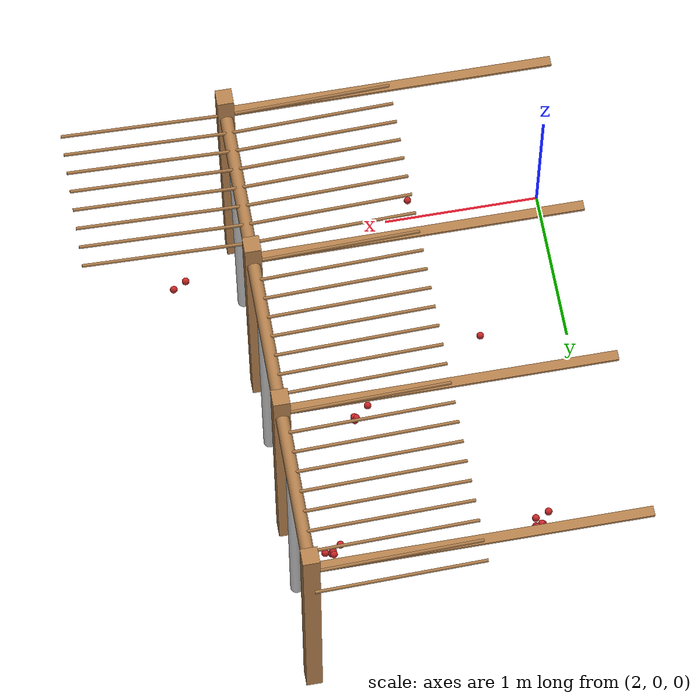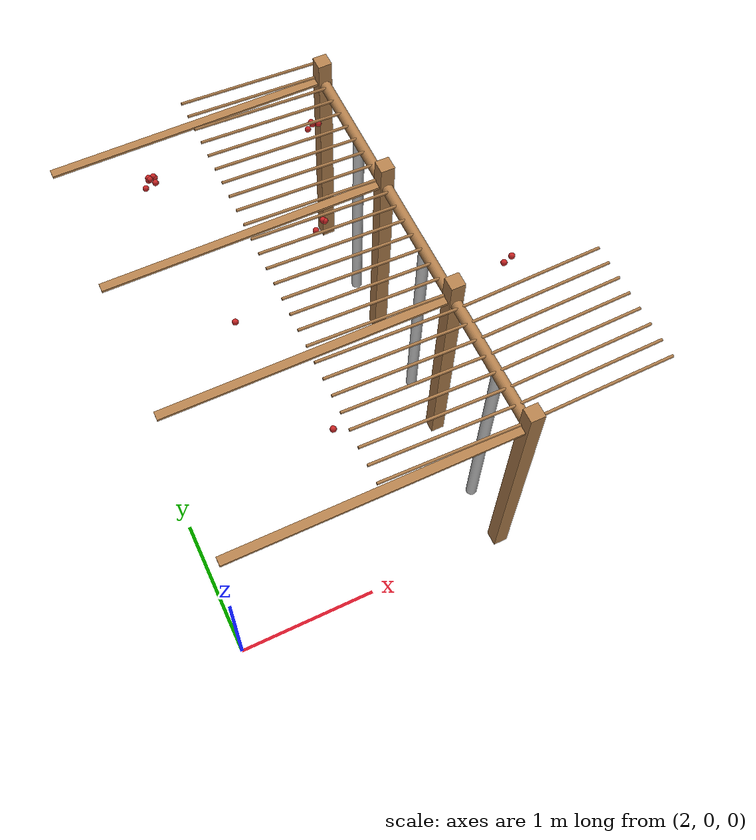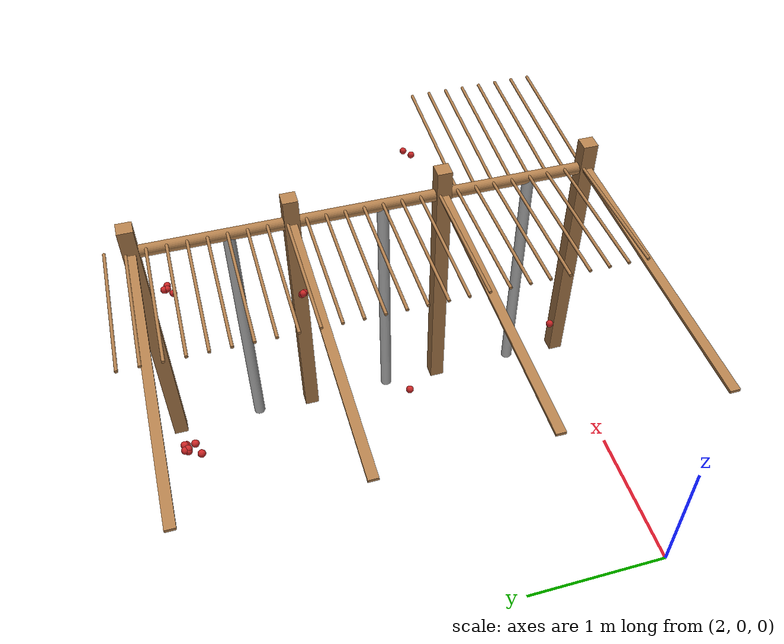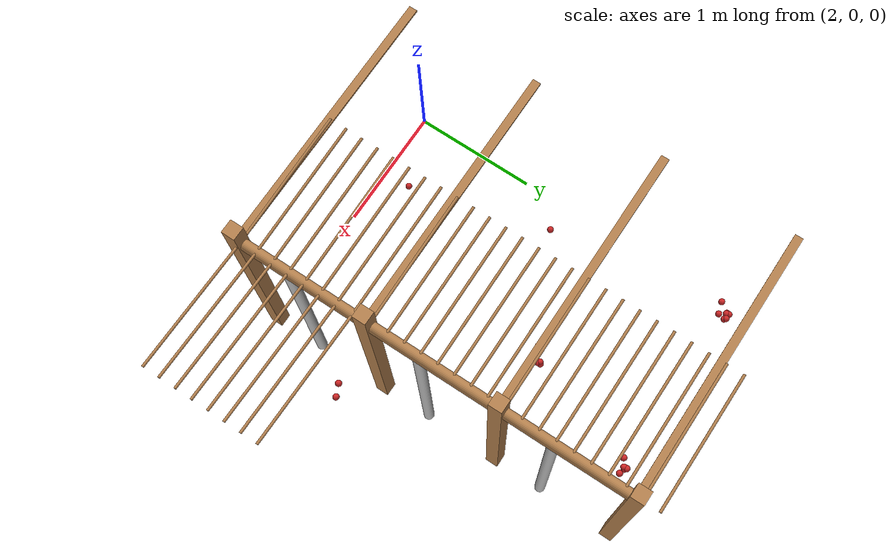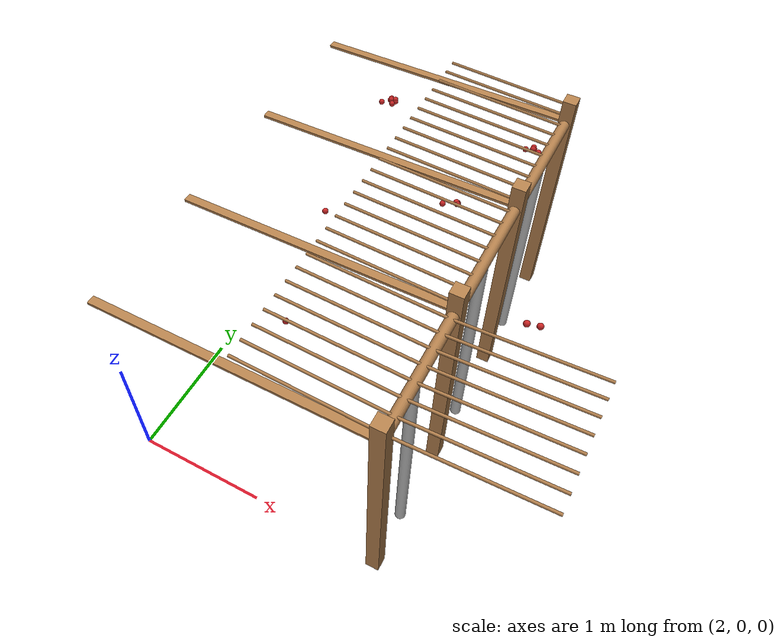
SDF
<sdf version="1.4">
 <model name="pergola">
  <include><name>post_14</name><pose>4.0 0.0 0 0 0 0</pose><uri>model://post</uri></include>
  <include><name>post_15</name><pose>4.0 1.0 0 0 0 0</pose><uri>model://post</uri></include>
  <include><name>post_16</name><pose>4.0 2.0 0 0 0 0</pose><uri>model://post</uri></include>
  <include><name>post_17</name><pose>4.0 3.0 0 0 0 0</pose><uri>model://post</uri></include>
  <link name="beam_7">
   <pose>3.0 0.0 1.81 0 0 0</pose>
   <collision name="collision"><geometry><box><size>2.0 0.06 0.02</size></box></geometry></collision>
   <visual name="visual">
    <geometry><box><size>2.0 0.06 0.02</size></box></geometry>
    <material><script><name>Gazebo/Wood</name></script></material>
   </visual>
   <inertial>
    <mass>5</mass>
    <inertia>
     <ixx>0.0016666666666666668</ixx>
     <ixy>0.0</ixy>
     <ixz>0.0</ixz>
     <iyy>1.6681666666666664</iyy>
     <iyz>0.0</iyz>
     <izz>1.6668333333333332</izz>
    </inertia>
   </inertial>
  </link>
  <link name="beam_8">
   <pose>3.0 1.0 1.81 0 0 0</pose>
   <collision name="collision"><geometry><box><size>2.0 0.06 0.02</size></box></geometry></collision>
   <visual name="visual">
    <geometry><box><size>2.0 0.06 0.02</size></box></geometry>
    <material><script><name>Gazebo/Wood</name></script></material>
   </visual>
   <inertial>
    <mass>5</mass>
    <inertia>
     <ixx>0.0016666666666666668</ixx>
     <ixy>0.0</ixy>
     <ixz>0.0</ixz>
     <iyy>1.6681666666666664</iyy>
     <iyz>0.0</iyz>
     <izz>1.6668333333333332</izz>
    </inertia>
   </inertial>
  </link>
  <link name="beam_9">
   <pose>3.0 2.0 1.81 0 0 0</pose>
   <collision name="collision"><geometry><box><size>2.0 0.06 0.02</size></box></geometry></collision>
   <visual name="visual">
    <geometry><box><size>2.0 0.06 0.02</size></box></geometry>
    <material><script><name>Gazebo/Wood</name></script></material>
   </visual>
   <inertial>
    <mass>5</mass>
    <inertia>
     <ixx>0.0016666666666666668</ixx>
     <ixy>0.0</ixy>
     <ixz>0.0</ixz>
     <iyy>1.6681666666666664</iyy>
     <iyz>0.0</iyz>
     <izz>1.6668333333333332</izz>
    </inertia>
   </inertial>
  </link>
  <link name="beam_10">
   <pose>3.0 3.0 1.81 0 0 0</pose>
   <collision name="collision"><geometry><box><size>2.0 0.06 0.02</size></box></geometry></collision>
   <visual name="visual">
    <geometry><box><size>2.0 0.06 0.02</size></box></geometry>
    <material><script><name>Gazebo/Wood</name></script></material>
   </visual>
   <inertial>
    <mass>5</mass>
    <inertia>
     <ixx>0.0016666666666666668</ixx>
     <ixy>0.0</ixy>
     <ixz>0.0</ixz>
     <iyy>1.6681666666666664</iyy>
     <iyz>0.0</iyz>
     <izz>1.6668333333333332</izz>
    </inertia>
   </inertial>
  </link>
  <include><name>tree_12</name><pose>4.0 0.4 0 0 0 0</pose><uri>model://tree_trunk</uri></include>
  <include><name>tree_13</name><pose>4.0 1.4 0 0 0 0</pose><uri>model://tree_trunk</uri></include>
  <include><name>tree_14</name><pose>4.0 2.4 0 0 0 0</pose><uri>model://tree_trunk</uri></include>
  <link name="baseBranch_12">
   <pose>4.0 0.5 1.8 1.5707963267948966 0 0</pose>
   <collision name="collision">
    <geometry><cylinder><radius>0.04</radius><length>0.94</length></cylinder></geometry>
   </collision>
   <visual name="visual">
    <geometry><cylinder><radius>0.04</radius><length>0.94</length></cylinder></geometry>
    <material><script><name>Gazebo/WoodFloor</name></script></material>
   </visual>
   <inertial>
    <mass>10</mass>
    <inertia>
     <ixx>0.7403333333333334</ixx>
     <ixy>0.0</ixy>
     <ixz>0.0</ixz>
     <iyy>0.7403333333333334</iyy>
     <iyz>0.0</iyz>
     <izz>0.008</izz>
    </inertia>
   </inertial>
  </link>
  <link name="baseBranch_13">
   <pose>4.0 1.5 1.8 1.5707963267948966 0 0</pose>
   <collision name="collision">
    <geometry><cylinder><radius>0.04</radius><length>0.94</length></cylinder></geometry>
   </collision>
   <visual name="visual">
    <geometry><cylinder><radius>0.04</radius><length>0.94</length></cylinder></geometry>
    <material><script><name>Gazebo/WoodFloor</name></script></material>
   </visual>
   <inertial>
    <mass>10</mass>
    <inertia>
     <ixx>0.7403333333333334</ixx>
     <ixy>0.0</ixy>
     <ixz>0.0</ixz>
     <iyy>0.7403333333333334</iyy>
     <iyz>0.0</iyz>
     <izz>0.008</izz>
    </inertia>
   </inertial>
  </link>
  <link name="baseBranch_14">
   <pose>4.0 2.5 1.8 1.5707963267948966 0 0</pose>
   <collision name="collision">
    <geometry><cylinder><radius>0.04</radius><length>0.94</length></cylinder></geometry>
   </collision>
   <visual name="visual">
    <geometry><cylinder><radius>0.04</radius><length>0.94</length></cylinder></geometry>
    <material><script><name>Gazebo/WoodFloor</name></script></material>
   </visual>
   <inertial>
    <mass>10</mass>
    <inertia>
     <ixx>0.7403333333333334</ixx>
     <ixy>0.0</ixy>
     <ixz>0.0</ixz>
     <iyy>0.7403333333333334</iyy>
     <iyz>0.0</iyz>
     <izz>0.008</izz>
    </inertia>
   </inertial>
  </link>
  <link name="vine_97">
   <pose>3.5 0.03 1.85 0 -1.5208379310729538 0</pose>
   <collision name="collision">
    <geometry><cylinder><radius>0.01</radius><length>1.0012492197250393</length></cylinder></geometry>
   </collision>
   <visual name="visual">
    <geometry><cylinder><radius>0.01</radius><length>1.0012492197250393</length></cylinder></geometry>
    <material><script><name>Gazebo/WoodFloor</name></script></material>
   </visual>
   <inertial>
    <mass>5</mass>
    <inertia>
     <ixx>0.41783333333333345</ixx>
     <ixy>0.0</ixy>
     <ixz>0.0</ixz>
     <iyy>0.41783333333333345</iyy>
     <iyz>0.0</iyz>
     <izz>0.00025</izz>
    </inertia>
   </inertial>
  </link>
  <link name="vine_99">
   <pose>3.5 0.155 1.85 0 -1.5208379310729538 0</pose>
   <collision name="collision">
    <geometry><cylinder><radius>0.01</radius><length>1.0012492197250393</length></cylinder></geometry>
   </collision>
   <visual name="visual">
    <geometry><cylinder><radius>0.01</radius><length>1.0012492197250393</length></cylinder></geometry>
    <material><script><name>Gazebo/WoodFloor</name></script></material>
   </visual>
   <inertial>
    <mass>5</mass>
    <inertia>
     <ixx>0.41783333333333345</ixx>
     <ixy>0.0</ixy>
     <ixz>0.0</ixz>
     <iyy>0.41783333333333345</iyy>
     <iyz>0.0</iyz>
     <izz>0.00025</izz>
    </inertia>
   </inertial>
  </link>
  <link name="vine_101">
   <pose>3.5 0.28 1.85 0 -1.5208379310729538 0</pose>
   <collision name="collision">
    <geometry><cylinder><radius>0.01</radius><length>1.0012492197250393</length></cylinder></geometry>
   </collision>
   <visual name="visual">
    <geometry><cylinder><radius>0.01</radius><length>1.0012492197250393</length></cylinder></geometry>
    <material><script><name>Gazebo/WoodFloor</name></script></material>
   </visual>
   <inertial>
    <mass>5</mass>
    <inertia>
     <ixx>0.41783333333333345</ixx>
     <ixy>0.0</ixy>
     <ixz>0.0</ixz>
     <iyy>0.41783333333333345</iyy>
     <iyz>0.0</iyz>
     <izz>0.00025</izz>
    </inertia>
   </inertial>
  </link>
  <link name="vine_103">
   <pose>3.5 0.405 1.85 0 -1.5208379310729538 0</pose>
   <collision name="collision">
    <geometry><cylinder><radius>0.01</radius><length>1.0012492197250393</length></cylinder></geometry>
   </collision>
   <visual name="visual">
    <geometry><cylinder><radius>0.01</radius><length>1.0012492197250393</length></cylinder></geometry>
    <material><script><name>Gazebo/WoodFloor</name></script></material>
   </visual>
   <inertial>
    <mass>5</mass>
    <inertia>
     <ixx>0.41783333333333345</ixx>
     <ixy>0.0</ixy>
     <ixz>0.0</ixz>
     <iyy>0.41783333333333345</iyy>
     <iyz>0.0</iyz>
     <izz>0.00025</izz>
    </inertia>
   </inertial>
  </link>
  <link name="vine_105">
   <pose>3.5 0.53 1.85 0 -1.5208379310729538 0</pose>
   <collision name="collision">
    <geometry><cylinder><radius>0.01</radius><length>1.0012492197250393</length></cylinder></geometry>
   </collision>
   <visual name="visual">
    <geometry><cylinder><radius>0.01</radius><length>1.0012492197250393</length></cylinder></geometry>
    <material><script><name>Gazebo/WoodFloor</name></script></material>
   </visual>
   <inertial>
    <mass>5</mass>
    <inertia>
     <ixx>0.41783333333333345</ixx>
     <ixy>0.0</ixy>
     <ixz>0.0</ixz>
     <iyy>0.41783333333333345</iyy>
     <iyz>0.0</iyz>
     <izz>0.00025</izz>
    </inertia>
   </inertial>
  </link>
  <link name="vine_107">
   <pose>3.5 0.655 1.85 0 -1.5208379310729538 0</pose>
   <collision name="collision">
    <geometry><cylinder><radius>0.01</radius><length>1.0012492197250393</length></cylinder></geometry>
   </collision>
   <visual name="visual">
    <geometry><cylinder><radius>0.01</radius><length>1.0012492197250393</length></cylinder></geometry>
    <material><script><name>Gazebo/WoodFloor</name></script></material>
   </visual>
   <inertial>
    <mass>5</mass>
    <inertia>
     <ixx>0.41783333333333345</ixx>
     <ixy>0.0</ixy>
     <ixz>0.0</ixz>
     <iyy>0.41783333333333345</iyy>
     <iyz>0.0</iyz>
     <izz>0.00025</izz>
    </inertia>
   </inertial>
  </link>
  <link name="vine_109">
   <pose>3.5 0.78 1.85 0 -1.5208379310729538 0</pose>
   <collision name="collision">
    <geometry><cylinder><radius>0.01</radius><length>1.0012492197250393</length></cylinder></geometry>
   </collision>
   <visual name="visual">
    <geometry><cylinder><radius>0.01</radius><length>1.0012492197250393</length></cylinder></geometry>
    <material><script><name>Gazebo/WoodFloor</name></script></material>
   </visual>
   <inertial>
    <mass>5</mass>
    <inertia>
     <ixx>0.41783333333333345</ixx>
     <ixy>0.0</ixy>
     <ixz>0.0</ixz>
     <iyy>0.41783333333333345</iyy>
     <iyz>0.0</iyz>
     <izz>0.00025</izz>
    </inertia>
   </inertial>
  </link>
  <link name="vine_111">
   <pose>3.5 0.905 1.85 0 -1.5208379310729538 0</pose>
   <collision name="collision">
    <geometry><cylinder><radius>0.01</radius><length>1.0012492197250393</length></cylinder></geometry>
   </collision>
   <visual name="visual">
    <geometry><cylinder><radius>0.01</radius><length>1.0012492197250393</length></cylinder></geometry>
    <material><script><name>Gazebo/WoodFloor</name></script></material>
   </visual>
   <inertial>
    <mass>5</mass>
    <inertia>
     <ixx>0.41783333333333345</ixx>
     <ixy>0.0</ixy>
     <ixz>0.0</ixz>
     <iyy>0.41783333333333345</iyy>
     <iyz>0.0</iyz>
     <izz>0.00025</izz>
    </inertia>
   </inertial>
  </link>
  <link name="vine_113">
   <pose>3.5 1.03 1.85 0 -1.5208379310729538 0</pose>
   <collision name="collision">
    <geometry><cylinder><radius>0.01</radius><length>1.0012492197250393</length></cylinder></geometry>
   </collision>
   <visual name="visual">
    <geometry><cylinder><radius>0.01</radius><length>1.0012492197250393</length></cylinder></geometry>
    <material><script><name>Gazebo/WoodFloor</name></script></material>
   </visual>
   <inertial>
    <mass>5</mass>
    <inertia>
     <ixx>0.41783333333333345</ixx>
     <ixy>0.0</ixy>
     <ixz>0.0</ixz>
     <iyy>0.41783333333333345</iyy>
     <iyz>0.0</iyz>
     <izz>0.00025</izz>
    </inertia>
   </inertial>
  </link>
  <link name="vine_115">
   <pose>3.5 1.155 1.85 0 -1.5208379310729538 0</pose>
   <collision name="collision">
    <geometry><cylinder><radius>0.01</radius><length>1.0012492197250393</length></cylinder></geometry>
   </collision>
   <visual name="visual">
    <geometry><cylinder><radius>0.01</radius><length>1.0012492197250393</length></cylinder></geometry>
    <material><script><name>Gazebo/WoodFloor</name></script></material>
   </visual>
   <inertial>
    <mass>5</mass>
    <inertia>
     <ixx>0.41783333333333345</ixx>
     <ixy>0.0</ixy>
     <ixz>0.0</ixz>
     <iyy>0.41783333333333345</iyy>
     <iyz>0.0</iyz>
     <izz>0.00025</izz>
    </inertia>
   </inertial>
  </link>
  <link name="vine_117">
   <pose>3.5 1.28 1.85 0 -1.5208379310729538 0</pose>
   <collision name="collision">
    <geometry><cylinder><radius>0.01</radius><length>1.0012492197250393</length></cylinder></geometry>
   </collision>
   <visual name="visual">
    <geometry><cylinder><radius>0.01</radius><length>1.0012492197250393</length></cylinder></geometry>
    <material><script><name>Gazebo/WoodFloor</name></script></material>
   </visual>
   <inertial>
    <mass>5</mass>
    <inertia>
     <ixx>0.41783333333333345</ixx>
     <ixy>0.0</ixy>
     <ixz>0.0</ixz>
     <iyy>0.41783333333333345</iyy>
     <iyz>0.0</iyz>
     <izz>0.00025</izz>
    </inertia>
   </inertial>
  </link>
  <link name="vine_119">
   <pose>3.5 1.405 1.85 0 -1.5208379310729538 0</pose>
   <collision name="collision">
    <geometry><cylinder><radius>0.01</radius><length>1.0012492197250393</length></cylinder></geometry>
   </collision>
   <visual name="visual">
    <geometry><cylinder><radius>0.01</radius><length>1.0012492197250393</length></cylinder></geometry>
    <material><script><name>Gazebo/WoodFloor</name></script></material>
   </visual>
   <inertial>
    <mass>5</mass>
    <inertia>
     <ixx>0.41783333333333345</ixx>
     <ixy>0.0</ixy>
     <ixz>0.0</ixz>
     <iyy>0.41783333333333345</iyy>
     <iyz>0.0</iyz>
     <izz>0.00025</izz>
    </inertia>
   </inertial>
  </link>
  <link name="vine_121">
   <pose>3.5 1.53 1.85 0 -1.5208379310729538 0</pose>
   <collision name="collision">
    <geometry><cylinder><radius>0.01</radius><length>1.0012492197250393</length></cylinder></geometry>
   </collision>
   <visual name="visual">
    <geometry><cylinder><radius>0.01</radius><length>1.0012492197250393</length></cylinder></geometry>
    <material><script><name>Gazebo/WoodFloor</name></script></material>
   </visual>
   <inertial>
    <mass>5</mass>
    <inertia>
     <ixx>0.41783333333333345</ixx>
     <ixy>0.0</ixy>
     <ixz>0.0</ixz>
     <iyy>0.41783333333333345</iyy>
     <iyz>0.0</iyz>
     <izz>0.00025</izz>
    </inertia>
   </inertial>
  </link>
  <link name="vine_123">
   <pose>3.5 1.655 1.85 0 -1.5208379310729538 0</pose>
   <collision name="collision">
    <geometry><cylinder><radius>0.01</radius><length>1.0012492197250393</length></cylinder></geometry>
   </collision>
   <visual name="visual">
    <geometry><cylinder><radius>0.01</radius><length>1.0012492197250393</length></cylinder></geometry>
    <material><script><name>Gazebo/WoodFloor</name></script></material>
   </visual>
   <inertial>
    <mass>5</mass>
    <inertia>
     <ixx>0.41783333333333345</ixx>
     <ixy>0.0</ixy>
     <ixz>0.0</ixz>
     <iyy>0.41783333333333345</iyy>
     <iyz>0.0</iyz>
     <izz>0.00025</izz>
    </inertia>
   </inertial>
  </link>
  <link name="vine_125">
   <pose>3.5 1.78 1.85 0 -1.5208379310729538 0</pose>
   <collision name="collision">
    <geometry><cylinder><radius>0.01</radius><length>1.0012492197250393</length></cylinder></geometry>
   </collision>
   <visual name="visual">
    <geometry><cylinder><radius>0.01</radius><length>1.0012492197250393</length></cylinder></geometry>
    <material><script><name>Gazebo/WoodFloor</name></script></material>
   </visual>
   <inertial>
    <mass>5</mass>
    <inertia>
     <ixx>0.41783333333333345</ixx>
     <ixy>0.0</ixy>
     <ixz>0.0</ixz>
     <iyy>0.41783333333333345</iyy>
     <iyz>0.0</iyz>
     <izz>0.00025</izz>
    </inertia>
   </inertial>
  </link>
  <link name="vine_127">
   <pose>3.5 1.905 1.85 0 -1.5208379310729538 0</pose>
   <collision name="collision">
    <geometry><cylinder><radius>0.01</radius><length>1.0012492197250393</length></cylinder></geometry>
   </collision>
   <visual name="visual">
    <geometry><cylinder><radius>0.01</radius><length>1.0012492197250393</length></cylinder></geometry>
    <material><script><name>Gazebo/WoodFloor</name></script></material>
   </visual>
   <inertial>
    <mass>5</mass>
    <inertia>
     <ixx>0.41783333333333345</ixx>
     <ixy>0.0</ixy>
     <ixz>0.0</ixz>
     <iyy>0.41783333333333345</iyy>
     <iyz>0.0</iyz>
     <izz>0.00025</izz>
    </inertia>
   </inertial>
  </link>
  <link name="vine_129">
   <pose>3.5 2.03 1.85 0 -1.5208379310729538 0</pose>
   <collision name="collision">
    <geometry><cylinder><radius>0.01</radius><length>1.0012492197250393</length></cylinder></geometry>
   </collision>
   <visual name="visual">
    <geometry><cylinder><radius>0.01</radius><length>1.0012492197250393</length></cylinder></geometry>
    <material><script><name>Gazebo/WoodFloor</name></script></material>
   </visual>
   <inertial>
    <mass>5</mass>
    <inertia>
     <ixx>0.41783333333333345</ixx>
     <ixy>0.0</ixy>
     <ixz>0.0</ixz>
     <iyy>0.41783333333333345</iyy>
     <iyz>0.0</iyz>
     <izz>0.00025</izz>
    </inertia>
   </inertial>
  </link>
  <link name="vine_131">
   <pose>3.5 2.155 1.85 0 -1.5208379310729538 0</pose>
   <collision name="collision">
    <geometry><cylinder><radius>0.01</radius><length>1.0012492197250393</length></cylinder></geometry>
   </collision>
   <visual name="visual">
    <geometry><cylinder><radius>0.01</radius><length>1.0012492197250393</length></cylinder></geometry>
    <material><script><name>Gazebo/WoodFloor</name></script></material>
   </visual>
   <inertial>
    <mass>5</mass>
    <inertia>
     <ixx>0.41783333333333345</ixx>
     <ixy>0.0</ixy>
     <ixz>0.0</ixz>
     <iyy>0.41783333333333345</iyy>
     <iyz>0.0</iyz>
     <izz>0.00025</izz>
    </inertia>
   </inertial>
  </link>
  <link name="vine_133">
   <pose>3.5 2.28 1.85 0 -1.5208379310729538 0</pose>
   <collision name="collision">
    <geometry><cylinder><radius>0.01</radius><length>1.0012492197250393</length></cylinder></geometry>
   </collision>
   <visual name="visual">
    <geometry><cylinder><radius>0.01</radius><length>1.0012492197250393</length></cylinder></geometry>
    <material><script><name>Gazebo/WoodFloor</name></script></material>
   </visual>
   <inertial>
    <mass>5</mass>
    <inertia>
     <ixx>0.41783333333333345</ixx>
     <ixy>0.0</ixy>
     <ixz>0.0</ixz>
     <iyy>0.41783333333333345</iyy>
     <iyz>0.0</iyz>
     <izz>0.00025</izz>
    </inertia>
   </inertial>
  </link>
  <link name="vine_135">
   <pose>3.5 2.405 1.85 0 -1.5208379310729538 0</pose>
   <collision name="collision">
    <geometry><cylinder><radius>0.01</radius><length>1.0012492197250393</length></cylinder></geometry>
   </collision>
   <visual name="visual">
    <geometry><cylinder><radius>0.01</radius><length>1.0012492197250393</length></cylinder></geometry>
    <material><script><name>Gazebo/WoodFloor</name></script></material>
   </visual>
   <inertial>
    <mass>5</mass>
    <inertia>
     <ixx>0.41783333333333345</ixx>
     <ixy>0.0</ixy>
     <ixz>0.0</ixz>
     <iyy>0.41783333333333345</iyy>
     <iyz>0.0</iyz>
     <izz>0.00025</izz>
    </inertia>
   </inertial>
  </link>
  <link name="vine_137">
   <pose>3.5 2.53 1.85 0 -1.5208379310729538 0</pose>
   <collision name="collision">
    <geometry><cylinder><radius>0.01</radius><length>1.0012492197250393</length></cylinder></geometry>
   </collision>
   <visual name="visual">
    <geometry><cylinder><radius>0.01</radius><length>1.0012492197250393</length></cylinder></geometry>
    <material><script><name>Gazebo/WoodFloor</name></script></material>
   </visual>
   <inertial>
    <mass>5</mass>
    <inertia>
     <ixx>0.41783333333333345</ixx>
     <ixy>0.0</ixy>
     <ixz>0.0</ixz>
     <iyy>0.41783333333333345</iyy>
     <iyz>0.0</iyz>
     <izz>0.00025</izz>
    </inertia>
   </inertial>
  </link>
  <link name="vine_139">
   <pose>3.5 2.655 1.85 0 -1.5208379310729538 0</pose>
   <collision name="collision">
    <geometry><cylinder><radius>0.01</radius><length>1.0012492197250393</length></cylinder></geometry>
   </collision>
   <visual name="visual">
    <geometry><cylinder><radius>0.01</radius><length>1.0012492197250393</length></cylinder></geometry>
    <material><script><name>Gazebo/WoodFloor</name></script></material>
   </visual>
   <inertial>
    <mass>5</mass>
    <inertia>
     <ixx>0.41783333333333345</ixx>
     <ixy>0.0</ixy>
     <ixz>0.0</ixz>
     <iyy>0.41783333333333345</iyy>
     <iyz>0.0</iyz>
     <izz>0.00025</izz>
    </inertia>
   </inertial>
  </link>
  <link name="vine_141">
   <pose>3.5 2.78 1.85 0 -1.5208379310729538 0</pose>
   <collision name="collision">
    <geometry><cylinder><radius>0.01</radius><length>1.0012492197250393</length></cylinder></geometry>
   </collision>
   <visual name="visual">
    <geometry><cylinder><radius>0.01</radius><length>1.0012492197250393</length></cylinder></geometry>
    <material><script><name>Gazebo/WoodFloor</name></script></material>
   </visual>
   <inertial>
    <mass>5</mass>
    <inertia>
     <ixx>0.41783333333333345</ixx>
     <ixy>0.0</ixy>
     <ixz>0.0</ixz>
     <iyy>0.41783333333333345</iyy>
     <iyz>0.0</iyz>
     <izz>0.00025</izz>
    </inertia>
   </inertial>
  </link>
  <link name="vine_143">
   <pose>3.5 2.905 1.85 0 -1.5208379310729538 0</pose>
   <collision name="collision">
    <geometry><cylinder><radius>0.01</radius><length>1.0012492197250393</length></cylinder></geometry>
   </collision>
   <visual name="visual">
    <geometry><cylinder><radius>0.01</radius><length>1.0012492197250393</length></cylinder></geometry>
    <material><script><name>Gazebo/WoodFloor</name></script></material>
   </visual>
   <inertial>
    <mass>5</mass>
    <inertia>
     <ixx>0.41783333333333345</ixx>
     <ixy>0.0</ixy>
     <ixz>0.0</ixz>
     <iyy>0.41783333333333345</iyy>
     <iyz>0.0</iyz>
     <izz>0.00025</izz>
    </inertia>
   </inertial>
  </link>
  <link name="vine_145">
   <pose>3.5 3.03 1.85 0 -1.5208379310729538 0</pose>
   <collision name="collision">
    <geometry><cylinder><radius>0.01</radius><length>1.0012492197250393</length></cylinder></geometry>
   </collision>
   <visual name="visual">
    <geometry><cylinder><radius>0.01</radius><length>1.0012492197250393</length></cylinder></geometry>
    <material><script><name>Gazebo/WoodFloor</name></script></material>
   </visual>
   <inertial>
    <mass>5</mass>
    <inertia>
     <ixx>0.41783333333333345</ixx>
     <ixy>0.0</ixy>
     <ixz>0.0</ixz>
     <iyy>0.41783333333333345</iyy>
     <iyz>0.0</iyz>
     <izz>0.00025</izz>
    </inertia>
   </inertial>
  </link>
  <link name="vine_147">
   <pose>3.5 3.155 1.85 0 -1.5208379310729538 0</pose>
   <collision name="collision">
    <geometry><cylinder><radius>0.01</radius><length>1.0012492197250393</length></cylinder></geometry>
   </collision>
   <visual name="visual">
    <geometry><cylinder><radius>0.01</radius><length>1.0012492197250393</length></cylinder></geometry>
    <material><script><name>Gazebo/WoodFloor</name></script></material>
   </visual>
   <inertial>
    <mass>5</mass>
    <inertia>
     <ixx>0.41783333333333345</ixx>
     <ixy>0.0</ixy>
     <ixz>0.0</ixz>
     <iyy>0.41783333333333345</iyy>
     <iyz>0.0</iyz>
     <izz>0.00025</izz>
    </inertia>
   </inertial>
  </link>
  <link name="vine_192">
   <pose>4.5 0.03 1.85 0 1.5208379310729538 0</pose>
   <collision name="collision">
    <geometry><cylinder><radius>0.01</radius><length>1.0012492197250393</length></cylinder></geometry>
   </collision>
   <visual name="visual">
    <geometry><cylinder><radius>0.01</radius><length>1.0012492197250393</length></cylinder></geometry>
    <material><script><name>Gazebo/WoodFloor</name></script></material>
   </visual>
   <inertial>
    <mass>5</mass>
    <inertia>
     <ixx>0.41783333333333345</ixx>
     <ixy>0.0</ixy>
     <ixz>0.0</ixz>
     <iyy>0.41783333333333345</iyy>
     <iyz>0.0</iyz>
     <izz>0.00025</izz>
    </inertia>
   </inertial>
  </link>
  <link name="vine_194">
   <pose>4.5 0.155 1.85 0 1.5208379310729538 0</pose>
   <collision name="collision">
    <geometry><cylinder><radius>0.01</radius><length>1.0012492197250393</length></cylinder></geometry>
   </collision>
   <visual name="visual">
    <geometry><cylinder><radius>0.01</radius><length>1.0012492197250393</length></cylinder></geometry>
    <material><script><name>Gazebo/WoodFloor</name></script></material>
   </visual>
   <inertial>
    <mass>5</mass>
    <inertia>
     <ixx>0.41783333333333345</ixx>
     <ixy>0.0</ixy>
     <ixz>0.0</ixz>
     <iyy>0.41783333333333345</iyy>
     <iyz>0.0</iyz>
     <izz>0.00025</izz>
    </inertia>
   </inertial>
  </link>
  <link name="vine_196">
   <pose>4.5 0.28 1.85 0 1.5208379310729538 0</pose>
   <collision name="collision">
    <geometry><cylinder><radius>0.01</radius><length>1.0012492197250393</length></cylinder></geometry>
   </collision>
   <visual name="visual">
    <geometry><cylinder><radius>0.01</radius><length>1.0012492197250393</length></cylinder></geometry>
    <material><script><name>Gazebo/WoodFloor</name></script></material>
   </visual>
   <inertial>
    <mass>5</mass>
    <inertia>
     <ixx>0.41783333333333345</ixx>
     <ixy>0.0</ixy>
     <ixz>0.0</ixz>
     <iyy>0.41783333333333345</iyy>
     <iyz>0.0</iyz>
     <izz>0.00025</izz>
    </inertia>
   </inertial>
  </link>
  <link name="vine_198">
   <pose>4.5 0.405 1.85 0 1.5208379310729538 0</pose>
   <collision name="collision">
    <geometry><cylinder><radius>0.01</radius><length>1.0012492197250393</length></cylinder></geometry>
   </collision>
   <visual name="visual">
    <geometry><cylinder><radius>0.01</radius><length>1.0012492197250393</length></cylinder></geometry>
    <material><script><name>Gazebo/WoodFloor</name></script></material>
   </visual>
   <inertial>
    <mass>5</mass>
    <inertia>
     <ixx>0.41783333333333345</ixx>
     <ixy>0.0</ixy>
     <ixz>0.0</ixz>
     <iyy>0.41783333333333345</iyy>
     <iyz>0.0</iyz>
     <izz>0.00025</izz>
    </inertia>
   </inertial>
  </link>
  <link name="vine_200">
   <pose>4.5 0.53 1.85 0 1.5208379310729538 0</pose>
   <collision name="collision">
    <geometry><cylinder><radius>0.01</radius><length>1.0012492197250393</length></cylinder></geometry>
   </collision>
   <visual name="visual">
    <geometry><cylinder><radius>0.01</radius><length>1.0012492197250393</length></cylinder></geometry>
    <material><script><name>Gazebo/WoodFloor</name></script></material>
   </visual>
   <inertial>
    <mass>5</mass>
    <inertia>
     <ixx>0.41783333333333345</ixx>
     <ixy>0.0</ixy>
     <ixz>0.0</ixz>
     <iyy>0.41783333333333345</iyy>
     <iyz>0.0</iyz>
     <izz>0.00025</izz>
    </inertia>
   </inertial>
  </link>
  <link name="vine_202">
   <pose>4.5 0.655 1.85 0 1.5208379310729538 0</pose>
   <collision name="collision">
    <geometry><cylinder><radius>0.01</radius><length>1.0012492197250393</length></cylinder></geometry>
   </collision>
   <visual name="visual">
    <geometry><cylinder><radius>0.01</radius><length>1.0012492197250393</length></cylinder></geometry>
    <material><script><name>Gazebo/WoodFloor</name></script></material>
   </visual>
   <inertial>
    <mass>5</mass>
    <inertia>
     <ixx>0.41783333333333345</ixx>
     <ixy>0.0</ixy>
     <ixz>0.0</ixz>
     <iyy>0.41783333333333345</iyy>
     <iyz>0.0</iyz>
     <izz>0.00025</izz>
    </inertia>
   </inertial>
  </link>
  <link name="vine_204">
   <pose>4.5 0.78 1.85 0 1.5208379310729538 0</pose>
   <collision name="collision">
    <geometry><cylinder><radius>0.01</radius><length>1.0012492197250393</length></cylinder></geometry>
   </collision>
   <visual name="visual">
    <geometry><cylinder><radius>0.01</radius><length>1.0012492197250393</length></cylinder></geometry>
    <material><script><name>Gazebo/WoodFloor</name></script></material>
   </visual>
   <inertial>
    <mass>5</mass>
    <inertia>
     <ixx>0.41783333333333345</ixx>
     <ixy>0.0</ixy>
     <ixz>0.0</ixz>
     <iyy>0.41783333333333345</iyy>
     <iyz>0.0</iyz>
     <izz>0.00025</izz>
    </inertia>
   </inertial>
  </link>
  <link name="vine_206">
   <pose>4.5 0.905 1.85 0 1.5208379310729538 0</pose>
   <collision name="collision">
    <geometry><cylinder><radius>0.01</radius><length>1.0012492197250393</length></cylinder></geometry>
   </collision>
   <visual name="visual">
    <geometry><cylinder><radius>0.01</radius><length>1.0012492197250393</length></cylinder></geometry>
    <material><script><name>Gazebo/WoodFloor</name></script></material>
   </visual>
   <inertial>
    <mass>5</mass>
    <inertia>
     <ixx>0.41783333333333345</ixx>
     <ixy>0.0</ixy>
     <ixz>0.0</ixz>
     <iyy>0.41783333333333345</iyy>
     <iyz>0.0</iyz>
     <izz>0.00025</izz>
    </inertia>
   </inertial>
  </link>
  <link name="fruit_0">
   <pose>3.48124596532613 1.9688616955845732 1.6043501258765045 0 0 0</pose>
   <collision name="fruit_collision_0"><geometry><sphere><radius>0.022</radius></sphere></geometry></collision>
   <visual name="visual">
    <geometry><sphere><radius>0.022</radius></sphere></geometry>
    <material><script><name>Gazebo/Red</name></script></material>
   </visual>
   <inertial>
    <mass>0.05</mass>
    <inertia>
     <ixx>9.679999999999999e-06</ixx>
     <ixy>0.0</ixy>
     <ixz>0.0</ixz>
     <iyy>9.679999999999999e-06</iyy>
     <iyz>0.0</iyz>
     <izz>9.679999999999999e-06</izz>
    </inertia>
   </inertial>
   <sensor name="fruit_contact_0" type="contact">
    <contact><collision>fruit_collision_0</collision></contact>
   </sensor>
  </link>
  <link name="fruit_3">
   <pose>2.5652901117325655 2.80417365282846 1.5777996387256017 0 0 0</pose>
   <collision name="fruit_collision_3"><geometry><sphere><radius>0.022</radius></sphere></geometry></collision>
   <visual name="visual">
    <geometry><sphere><radius>0.022</radius></sphere></geometry>
    <material><script><name>Gazebo/Red</name></script></material>
   </visual>
   <inertial>
    <mass>0.05</mass>
    <inertia>
     <ixx>9.679999999999999e-06</ixx>
     <ixy>0.0</ixy>
     <ixz>0.0</ixz>
     <iyy>9.679999999999999e-06</iyy>
     <iyz>0.0</iyz>
     <izz>9.679999999999999e-06</izz>
    </inertia>
   </inertial>
   <sensor name="fruit_contact_3" type="contact">
    <contact><collision>fruit_collision_3</collision></contact>
   </sensor>
  </link>
  <link name="fruit_4">
   <pose>4.413713193997998 1.08854193352347 1.826189019774437 0 0 0</pose>
   <collision name="fruit_collision_4"><geometry><sphere><radius>0.022</radius></sphere></geometry></collision>
   <visual name="visual">
    <geometry><sphere><radius>0.022</radius></sphere></geometry>
    <material><script><name>Gazebo/Red</name></script></material>
   </visual>
   <inertial>
    <mass>0.05</mass>
    <inertia>
     <ixx>9.679999999999999e-06</ixx>
     <ixy>0.0</ixy>
     <ixz>0.0</ixz>
     <iyy>9.679999999999999e-06</iyy>
     <iyz>0.0</iyz>
     <izz>9.679999999999999e-06</izz>
    </inertia>
   </inertial>
   <sensor name="fruit_contact_4" type="contact">
    <contact><collision>fruit_collision_4</collision></contact>
   </sensor>
  </link>
  <link name="fruit_12">
   <pose>2.7315603595949653 1.5928750879810518 1.5010689712865561 0 0 0</pose>
   <collision name="fruit_collision_12"><geometry><sphere><radius>0.022</radius></sphere></geometry></collision>
   <visual name="visual">
    <geometry><sphere><radius>0.022</radius></sphere></geometry>
    <material><script><name>Gazebo/Red</name></script></material>
   </visual>
   <inertial>
    <mass>0.05</mass>
    <inertia>
     <ixx>9.679999999999999e-06</ixx>
     <ixy>0.0</ixy>
     <ixz>0.0</ixz>
     <iyy>9.679999999999999e-06</iyy>
     <iyz>0.0</iyz>
     <izz>9.679999999999999e-06</izz>
    </inertia>
   </inertial>
   <sensor name="fruit_contact_12" type="contact">
    <contact><collision>fruit_collision_12</collision></contact>
   </sensor>
  </link>
  <link name="fruit_17">
   <pose>2.9922607162508292 0.6214303603857965 1.4905732123118223 0 0 0</pose>
   <collision name="fruit_collision_17"><geometry><sphere><radius>0.022</radius></sphere></geometry></collision>
   <visual name="visual">
    <geometry><sphere><radius>0.022</radius></sphere></geometry>
    <material><script><name>Gazebo/Red</name></script></material>
   </visual>
   <inertial>
    <mass>0.05</mass>
    <inertia>
     <ixx>9.679999999999999e-06</ixx>
     <ixy>0.0</ixy>
     <ixz>0.0</ixz>
     <iyy>9.679999999999999e-06</iyy>
     <iyz>0.0</iyz>
     <izz>9.679999999999999e-06</izz>
    </inertia>
   </inertial>
   <sensor name="fruit_contact_17" type="contact">
    <contact><collision>fruit_collision_17</collision></contact>
   </sensor>
  </link>
  <link name="fruit_18">
   <pose>3.7913984874766964 2.8021836696470257 1.5942901776091416 0 0 0</pose>
   <collision name="fruit_collision_18"><geometry><sphere><radius>0.022</radius></sphere></geometry></collision>
   <visual name="visual">
    <geometry><sphere><radius>0.022</radius></sphere></geometry>
    <material><script><name>Gazebo/Red</name></script></material>
   </visual>
   <inertial>
    <mass>0.05</mass>
    <inertia>
     <ixx>9.679999999999999e-06</ixx>
     <ixy>0.0</ixy>
     <ixz>0.0</ixz>
     <iyy>9.679999999999999e-06</iyy>
     <iyz>0.0</iyz>
     <izz>9.679999999999999e-06</izz>
    </inertia>
   </inertial>
   <sensor name="fruit_contact_18" type="contact">
    <contact><collision>fruit_collision_18</collision></contact>
   </sensor>
  </link>
  <link name="fruit_31">
   <pose>3.5689117042010308 2.0409134640872253 1.5852538067636754 0 0 0</pose>
   <collision name="fruit_collision_31"><geometry><sphere><radius>0.022</radius></sphere></geometry></collision>
   <visual name="visual">
    <geometry><sphere><radius>0.022</radius></sphere></geometry>
    <material><script><name>Gazebo/Red</name></script></material>
   </visual>
   <inertial>
    <mass>0.05</mass>
    <inertia>
     <ixx>9.679999999999999e-06</ixx>
     <ixy>0.0</ixy>
     <ixz>0.0</ixz>
     <iyy>9.679999999999999e-06</iyy>
     <iyz>0.0</iyz>
     <izz>9.679999999999999e-06</izz>
    </inertia>
   </inertial>
   <sensor name="fruit_contact_31" type="contact">
    <contact><collision>fruit_collision_31</collision></contact>
   </sensor>
  </link>
  <link name="fruit_33">
   <pose>2.617826358032793 2.869484255889479 1.5742802166165308 0 0 0</pose>
   <collision name="fruit_collision_33"><geometry><sphere><radius>0.022</radius></sphere></geometry></collision>
   <visual name="visual">
    <geometry><sphere><radius>0.022</radius></sphere></geometry>
    <material><script><name>Gazebo/Red</name></script></material>
   </visual>
   <inertial>
    <mass>0.05</mass>
    <inertia>
     <ixx>9.679999999999999e-06</ixx>
     <ixy>0.0</ixy>
     <ixz>0.0</ixz>
     <iyy>9.679999999999999e-06</iyy>
     <iyz>0.0</iyz>
     <izz>9.679999999999999e-06</izz>
    </inertia>
   </inertial>
   <sensor name="fruit_contact_33" type="contact">
    <contact><collision>fruit_collision_33</collision></contact>
   </sensor>
  </link>
  <link name="fruit_34">
   <pose>3.8399891918193765 2.8333660627687314 1.591427657097101 0 0 0</pose>
   <collision name="fruit_collision_34"><geometry><sphere><radius>0.022</radius></sphere></geometry></collision>
   <visual name="visual">
    <geometry><sphere><radius>0.022</radius></sphere></geometry>
    <material><script><name>Gazebo/Red</name></script></material>
   </visual>
   <inertial>
    <mass>0.05</mass>
    <inertia>
     <ixx>9.679999999999999e-06</ixx>
     <ixy>0.0</ixy>
     <ixz>0.0</ixz>
     <iyy>9.679999999999999e-06</iyy>
     <iyz>0.0</iyz>
     <izz>9.679999999999999e-06</izz>
    </inertia>
   </inertial>
   <sensor name="fruit_contact_34" type="contact">
    <contact><collision>fruit_collision_34</collision></contact>
   </sensor>
  </link>
  <link name="fruit_40">
   <pose>3.838544258366191 2.854023201662945 1.5914336253584338 0 0 0</pose>
   <collision name="fruit_collision_40"><geometry><sphere><radius>0.022</radius></sphere></geometry></collision>
   <visual name="visual">
    <geometry><sphere><radius>0.022</radius></sphere></geometry>
    <material><script><name>Gazebo/Red</name></script></material>
   </visual>
   <inertial>
    <mass>0.05</mass>
    <inertia>
     <ixx>9.679999999999999e-06</ixx>
     <ixy>0.0</ixy>
     <ixz>0.0</ixz>
     <iyy>9.679999999999999e-06</iyy>
     <iyz>0.0</iyz>
     <izz>9.679999999999999e-06</izz>
    </inertia>
   </inertial>
   <sensor name="fruit_contact_40" type="contact">
    <contact><collision>fruit_collision_40</collision></contact>
   </sensor>
  </link>
  <link name="fruit_46">
   <pose>3.8484308482402847 2.841829677273177 1.5803934860556852 0 0 0</pose>
   <collision name="fruit_collision_46"><geometry><sphere><radius>0.022</radius></sphere></geometry></collision>
   <visual name="visual">
    <geometry><sphere><radius>0.022</radius></sphere></geometry>
    <material><script><name>Gazebo/Red</name></script></material>
   </visual>
   <inertial>
    <mass>0.05</mass>
    <inertia>
     <ixx>9.679999999999999e-06</ixx>
     <ixy>0.0</ixy>
     <ixz>0.0</ixz>
     <iyy>9.679999999999999e-06</iyy>
     <iyz>0.0</iyz>
     <izz>9.679999999999999e-06</izz>
    </inertia>
   </inertial>
   <sensor name="fruit_contact_46" type="contact">
    <contact><collision>fruit_collision_46</collision></contact>
   </sensor>
  </link>
  <link name="fruit_51">
   <pose>3.5609879585369844 2.032920147416122 1.5984732947841118 0 0 0</pose>
   <collision name="fruit_collision_51"><geometry><sphere><radius>0.022</radius></sphere></geometry></collision>
   <visual name="visual">
    <geometry><sphere><radius>0.022</radius></sphere></geometry>
    <material><script><name>Gazebo/Red</name></script></material>
   </visual>
   <inertial>
    <mass>0.05</mass>
    <inertia>
     <ixx>9.679999999999999e-06</ixx>
     <ixy>0.0</ixy>
     <ixz>0.0</ixz>
     <iyy>9.679999999999999e-06</iyy>
     <iyz>0.0</iyz>
     <izz>9.679999999999999e-06</izz>
    </inertia>
   </inertial>
   <sensor name="fruit_contact_51" type="contact">
    <contact><collision>fruit_collision_51</collision></contact>
   </sensor>
  </link>
  <link name="fruit_52">
   <pose>3.8858421847457736 2.8313285348767208 1.5772247421487016 0 0 0</pose>
   <collision name="fruit_collision_52"><geometry><sphere><radius>0.022</radius></sphere></geometry></collision>
   <visual name="visual">
    <geometry><sphere><radius>0.022</radius></sphere></geometry>
    <material><script><name>Gazebo/Red</name></script></material>
   </visual>
   <inertial>
    <mass>0.05</mass>
    <inertia>
     <ixx>9.679999999999999e-06</ixx>
     <ixy>0.0</ixy>
     <ixz>0.0</ixz>
     <iyy>9.679999999999999e-06</iyy>
     <iyz>0.0</iyz>
     <izz>9.679999999999999e-06</izz>
    </inertia>
   </inertial>
   <sensor name="fruit_contact_52" type="contact">
    <contact><collision>fruit_collision_52</collision></contact>
   </sensor>
  </link>
  <link name="fruit_58">
   <pose>3.571133486359797 2.0228739823772544 1.5942433823643753 0 0 0</pose>
   <collision name="fruit_collision_58"><geometry><sphere><radius>0.022</radius></sphere></geometry></collision>
   <visual name="visual">
    <geometry><sphere><radius>0.022</radius></sphere></geometry>
    <material><script><name>Gazebo/Red</name></script></material>
   </visual>
   <inertial>
    <mass>0.05</mass>
    <inertia>
     <ixx>9.679999999999999e-06</ixx>
     <ixy>0.0</ixy>
     <ixz>0.0</ixz>
     <iyy>9.679999999999999e-06</iyy>
     <iyz>0.0</iyz>
     <izz>9.679999999999999e-06</izz>
    </inertia>
   </inertial>
   <sensor name="fruit_contact_58" type="contact">
    <contact><collision>fruit_collision_58</collision></contact>
   </sensor>
  </link>
  <link name="fruit_68">
   <pose>2.6096274552376406 2.8711348158643917 1.5662454847009286 0 0 0</pose>
   <collision name="fruit_collision_68"><geometry><sphere><radius>0.022</radius></sphere></geometry></collision>
   <visual name="visual">
    <geometry><sphere><radius>0.022</radius></sphere></geometry>
    <material><script><name>Gazebo/Red</name></script></material>
   </visual>
   <inertial>
    <mass>0.05</mass>
    <inertia>
     <ixx>9.679999999999999e-06</ixx>
     <ixy>0.0</ixy>
     <ixz>0.0</ixz>
     <iyy>9.679999999999999e-06</iyy>
     <iyz>0.0</iyz>
     <izz>9.679999999999999e-06</izz>
    </inertia>
   </inertial>
   <sensor name="fruit_contact_68" type="contact">
    <contact><collision>fruit_collision_68</collision></contact>
   </sensor>
  </link>
  <link name="fruit_73">
   <pose>2.6128274286948563 2.886211671852129 1.5721976290068262 0 0 0</pose>
   <collision name="fruit_collision_73"><geometry><sphere><radius>0.022</radius></sphere></geometry></collision>
   <visual name="visual">
    <geometry><sphere><radius>0.022</radius></sphere></geometry>
    <material><script><name>Gazebo/Red</name></script></material>
   </visual>
   <inertial>
    <mass>0.05</mass>
    <inertia>
     <ixx>9.679999999999999e-06</ixx>
     <ixy>0.0</ixy>
     <ixz>0.0</ixz>
     <iyy>9.679999999999999e-06</iyy>
     <iyz>0.0</iyz>
     <izz>9.679999999999999e-06</izz>
    </inertia>
   </inertial>
   <sensor name="fruit_contact_73" type="contact">
    <contact><collision>fruit_collision_73</collision></contact>
   </sensor>
  </link>
  <link name="fruit_78">
   <pose>4.490500525629277 1.1214083732640503 1.8093439370230413 0 0 0</pose>
   <collision name="fruit_collision_78"><geometry><sphere><radius>0.022</radius></sphere></geometry></collision>
   <visual name="visual">
    <geometry><sphere><radius>0.022</radius></sphere></geometry>
    <material><script><name>Gazebo/Red</name></script></material>
   </visual>
   <inertial>
    <mass>0.05</mass>
    <inertia>
     <ixx>9.679999999999999e-06</ixx>
     <ixy>0.0</ixy>
     <ixz>0.0</ixz>
     <iyy>9.679999999999999e-06</iyy>
     <iyz>0.0</iyz>
     <izz>9.679999999999999e-06</izz>
    </inertia>
   </inertial>
   <sensor name="fruit_contact_78" type="contact">
    <contact><collision>fruit_collision_78</collision></contact>
   </sensor>
  </link>
  <link name="fruit_80">
   <pose>2.6447608287674633 2.8286179027528666 1.5709234914145418 0 0 0</pose>
   <collision name="fruit_collision_80"><geometry><sphere><radius>0.022</radius></sphere></geometry></collision>
   <visual name="visual">
    <geometry><sphere><radius>0.022</radius></sphere></geometry>
    <material><script><name>Gazebo/Red</name></script></material>
   </visual>
   <inertial>
    <mass>0.05</mass>
    <inertia>
     <ixx>9.679999999999999e-06</ixx>
     <ixy>0.0</ixy>
     <ixz>0.0</ixz>
     <iyy>9.679999999999999e-06</iyy>
     <iyz>0.0</iyz>
     <izz>9.679999999999999e-06</izz>
    </inertia>
   </inertial>
   <sensor name="fruit_contact_80" type="contact">
    <contact><collision>fruit_collision_80</collision></contact>
   </sensor>
  </link>
  <link name="fruit_93">
   <pose>2.6532100915788006 2.8755819537437746 1.5630740513013386 0 0 0</pose>
   <collision name="fruit_collision_93"><geometry><sphere><radius>0.022</radius></sphere></geometry></collision>
   <visual name="visual">
    <geometry><sphere><radius>0.022</radius></sphere></geometry>
    <material><script><name>Gazebo/Red</name></script></material>
   </visual>
   <inertial>
    <mass>0.05</mass>
    <inertia>
     <ixx>9.679999999999999e-06</ixx>
     <ixy>0.0</ixy>
     <ixz>0.0</ixz>
     <iyy>9.679999999999999e-06</iyy>
     <iyz>0.0</iyz>
     <izz>9.679999999999999e-06</izz>
    </inertia>
   </inertial>
   <sensor name="fruit_contact_93" type="contact">
    <contact><collision>fruit_collision_93</collision></contact>
   </sensor>
  </link>
  <link name="fruit_95">
   <pose>2.6474301303998016 2.884893981355905 1.573061877157343 0 0 0</pose>
   <collision name="fruit_collision_95"><geometry><sphere><radius>0.022</radius></sphere></geometry></collision>
   <visual name="visual">
    <geometry><sphere><radius>0.022</radius></sphere></geometry>
    <material><script><name>Gazebo/Red</name></script></material>
   </visual>
   <inertial>
    <mass>0.05</mass>
    <inertia>
     <ixx>9.679999999999999e-06</ixx>
     <ixy>0.0</ixy>
     <ixz>0.0</ixz>
     <iyy>9.679999999999999e-06</iyy>
     <iyz>0.0</iyz>
     <izz>9.679999999999999e-06</izz>
    </inertia>
   </inertial>
   <sensor name="fruit_contact_95" type="contact">
    <contact><collision>fruit_collision_95</collision></contact>
   </sensor>
  </link>
 </model>
</sdf>
